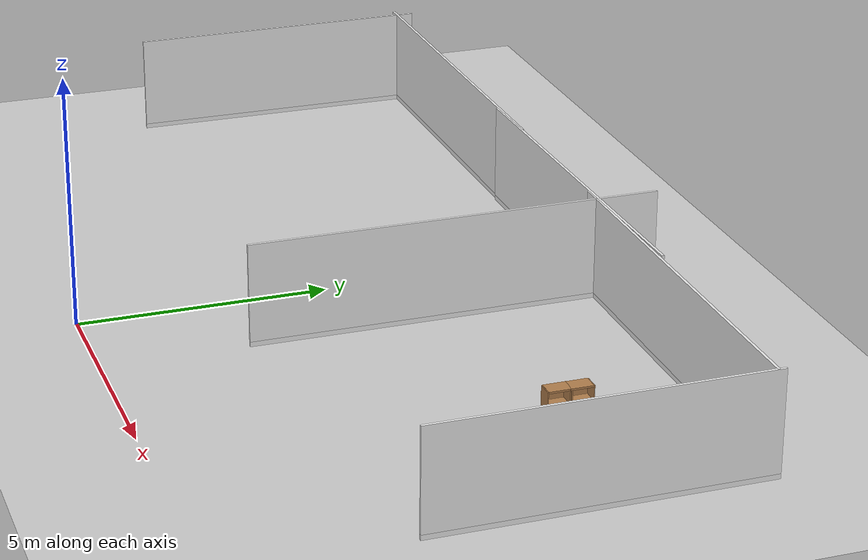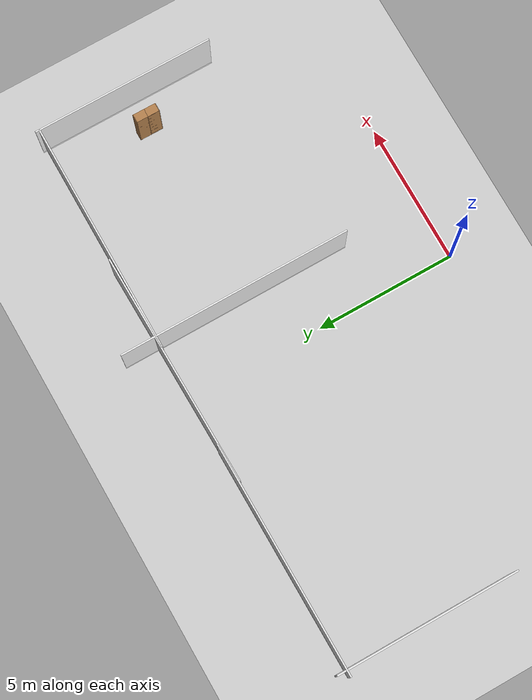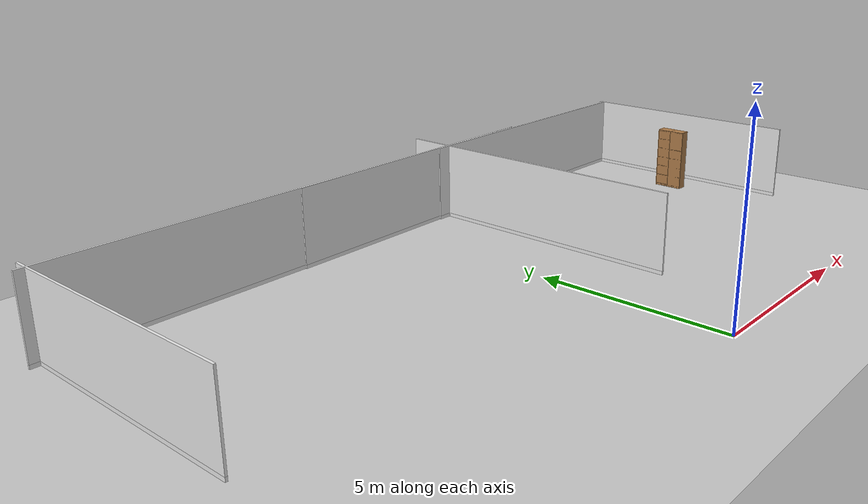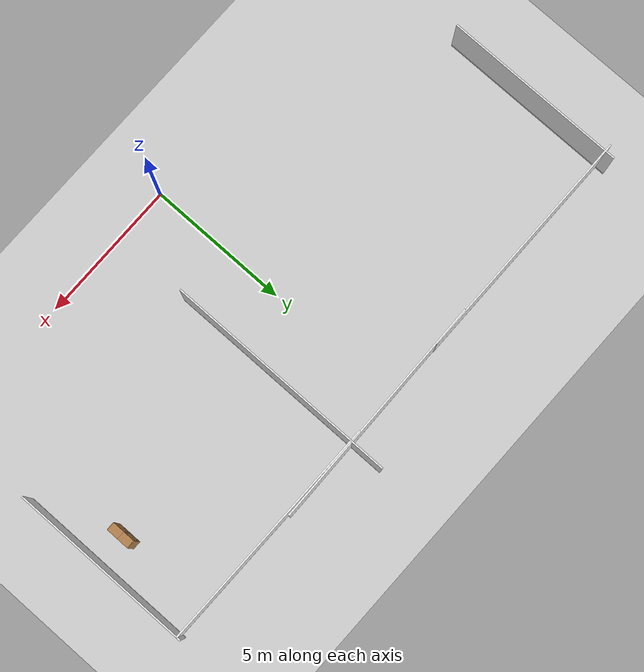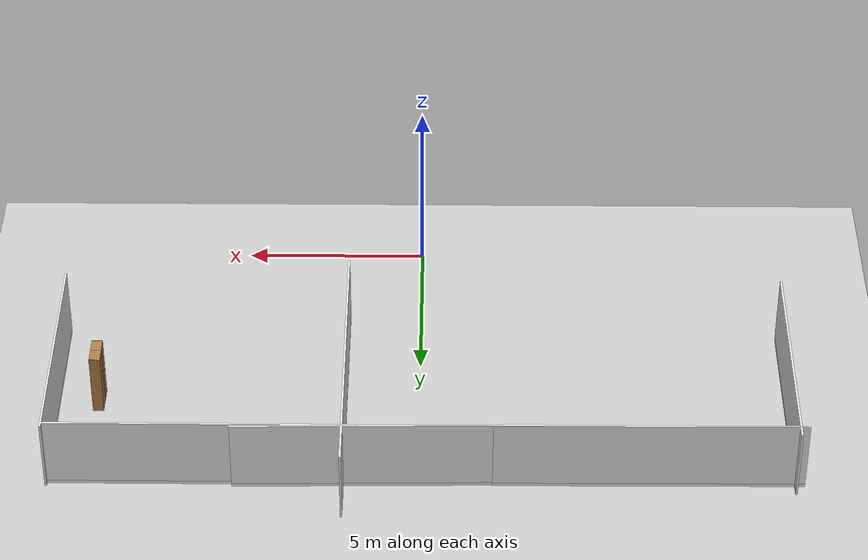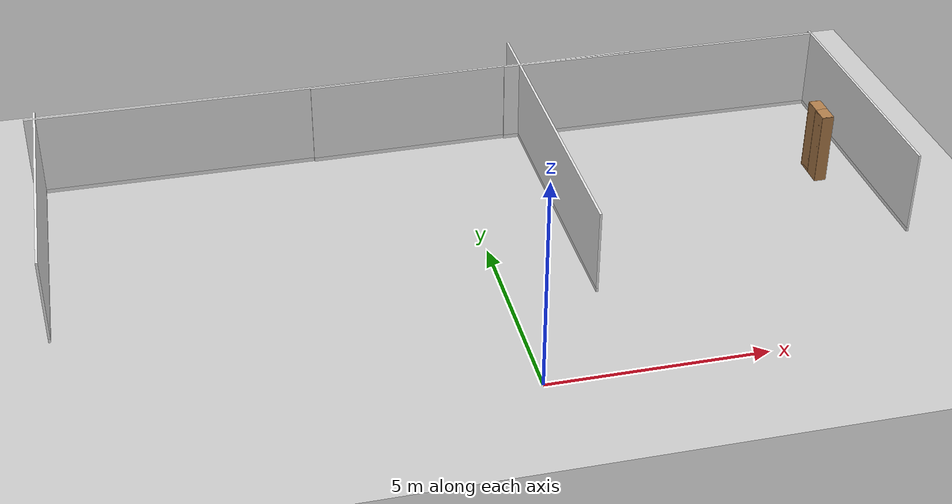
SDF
<sdf version="1.7">
 <world name="default">
  <model name="ground_plane">
   <static>1</static>
   <link name="link">
    <collision name="collision">
     <geometry><plane><normal>0 0 1</normal><size>100 100</size></plane></geometry>
     <surface><friction><ode><mu>100</mu><mu2>50</mu2></ode></friction></surface>
    </collision>
    <visual name="visual">
     <cast_shadows>0</cast_shadows>
     <geometry><plane><normal>0 0 1</normal><size>100 100</size></plane></geometry>
     <material>
      <script><uri>file://media/materials/scripts/gazebo.material</uri><name>Gazebo/Grey</name></script>
     </material>
    </visual>
   </link>
  </model>
  <model name="full_wall_55_6475_2090">
   <link name="link">
    <inertial>
     <mass>50</mass>
     <inertia><ixx>1</ixx><ixy>0</ixy><ixz>0</ixz><iyy>1</iyy><iyz>0</iyz><izz>1</izz></inertia>
    </inertial>
    <visual name="bottom_frame">
     <pose>0 0 0.05 0 -0 0</pose>
     <geometry><box><size>0.055 6.475 0.1</size></box></geometry>
     <material>
      <script><uri>model://base_materials/color/scripts</uri><name>hsr_color/white</name></script>
     </material>
    </visual>
    <collision name="collision_bottom_frame">
     <pose>0 0 0.05 0 -0 0</pose>
     <geometry><box><size>0.055 6.475 0.1</size></box></geometry>
    </collision>
    <visual name="wall">
     <pose>0 0 1.095 0 -0 0</pose>
     <geometry><box><size>0.055 6.475 1.99</size></box></geometry>
     <material>
      <script>
       <uri>model://base_materials/wall/scripts</uri>
       <uri>model://base_materials/wall/textures</uri>
       <name>wall/white_noise</name>
      </script>
     </material>
    </visual>
    <collision name="collision_wall">
     <pose>0 0 1.095 0 -0 0</pose>
     <geometry><box><size>0.055 6.475 1.99</size></box></geometry>
    </collision>
    <velocity_decay><linear>0</linear><angular>0</angular></velocity_decay>
   </link>
   <static>1</static>
   <pose>9.89869 6.81005 0 0 -0 0</pose>
  </model>
  <model name="full_wall_55_6475_2090_0">
   <link name="link">
    <inertial>
     <mass>50</mass>
     <inertia><ixx>1</ixx><ixy>0</ixy><ixz>0</ixz><iyy>1</iyy><iyz>0</iyz><izz>1</izz></inertia>
    </inertial>
    <visual name="bottom_frame">
     <pose>0 0 0.05 0 -0 0</pose>
     <geometry><box><size>0.055 6.475 0.1</size></box></geometry>
     <material>
      <script><uri>model://base_materials/color/scripts</uri><name>hsr_color/white</name></script>
     </material>
    </visual>
    <collision name="collision_bottom_frame">
     <pose>0 0 0.05 0 -0 0</pose>
     <geometry><box><size>0.055 6.475 0.1</size></box></geometry>
    </collision>
    <visual name="wall">
     <pose>0 0 1.095 0 -0 0</pose>
     <geometry><box><size>0.055 6.475 1.99</size></box></geometry>
     <material>
      <script>
       <uri>model://base_materials/wall/scripts</uri>
       <uri>model://base_materials/wall/textures</uri>
       <name>wall/white_noise</name>
      </script>
     </material>
    </visual>
    <collision name="collision_wall">
     <pose>0 0 1.095 0 -0 0</pose>
     <geometry><box><size>0.055 6.475 1.99</size></box></geometry>
    </collision>
    <velocity_decay><linear>0</linear><angular>0</angular></velocity_decay>
   </link>
   <static>1</static>
   <pose>-9.98989 6.98373 0 0 -0 0</pose>
  </model>
  <model name="full_wall_55_8295_2090_6">
   <link name="link">
    <inertial>
     <mass>50</mass>
     <inertia><ixx>1</ixx><ixy>0</ixy><ixz>0</ixz><iyy>1</iyy><iyz>0</iyz><izz>1</izz></inertia>
    </inertial>
    <visual name="bottom_frame">
     <pose>0 0 0.05 0 -0 0</pose>
     <geometry><box><size>0.055 8.295 0.1</size></box></geometry>
     <material>
      <script><uri>model://base_materials/color/scripts</uri><name>hsr_color/white</name></script>
     </material>
    </visual>
    <collision name="collision_bottom_frame">
     <pose>0 0 0.05 0 -0 0</pose>
     <geometry><box><size>0.055 8.295 0.1</size></box></geometry>
    </collision>
    <visual name="wall">
     <pose>0 0 1.095 0 -0 0</pose>
     <geometry><box><size>0.055 8.295 1.99</size></box></geometry>
     <material>
      <script>
       <uri>model://base_materials/wall/scripts</uri>
       <uri>model://base_materials/wall/textures</uri>
       <name>wall/white_noise</name>
      </script>
     </material>
    </visual>
    <collision name="collision_wall">
     <pose>0 0 1.095 0 -0 0</pose>
     <geometry><box><size>0.055 8.295 1.99</size></box></geometry>
    </collision>
    <velocity_decay><linear>0</linear><angular>0</angular></velocity_decay>
   </link>
   <static>1</static>
   <pose>-6.09587 9.88738 0 0 0 -1.56604</pose>
  </model>
  <model name="full_wall_55_8295_2090_7">
   <link name="link">
    <inertial>
     <mass>50</mass>
     <inertia><ixx>1</ixx><ixy>0</ixy><ixz>0</ixz><iyy>1</iyy><iyz>0</iyz><izz>1</izz></inertia>
    </inertial>
    <visual name="bottom_frame">
     <pose>0 0 0.05 0 -0 0</pose>
     <geometry><box><size>0.055 8.295 0.1</size></box></geometry>
     <material>
      <script><uri>model://base_materials/color/scripts</uri><name>hsr_color/white</name></script>
     </material>
    </visual>
    <collision name="collision_bottom_frame">
     <pose>0 0 0.05 0 -0 0</pose>
     <geometry><box><size>0.055 8.295 0.1</size></box></geometry>
    </collision>
    <visual name="wall">
     <pose>0 0 1.095 0 -0 0</pose>
     <geometry><box><size>0.055 8.295 1.99</size></box></geometry>
     <material>
      <script>
       <uri>model://base_materials/wall/scripts</uri>
       <uri>model://base_materials/wall/textures</uri>
       <name>wall/white_noise</name>
      </script>
     </material>
    </visual>
    <collision name="collision_wall">
     <pose>0 0 1.095 0 -0 0</pose>
     <geometry><box><size>0.055 8.295 1.99</size></box></geometry>
    </collision>
    <velocity_decay><linear>0</linear><angular>0</angular></velocity_decay>
   </link>
   <static>1</static>
   <pose>0.819815 9.93128 0 0 0 -1.55515</pose>
  </model>
  <model name="full_wall_55_8295_2090_8">
   <link name="link">
    <inertial>
     <mass>50</mass>
     <inertia><ixx>1</ixx><ixy>0</ixy><ixz>0</ixz><iyy>1</iyy><iyz>0</iyz><izz>1</izz></inertia>
    </inertial>
    <visual name="bottom_frame">
     <pose>0 0 0.05 0 -0 0</pose>
     <geometry><box><size>0.055 8.295 0.1</size></box></geometry>
     <material>
      <script><uri>model://base_materials/color/scripts</uri><name>hsr_color/white</name></script>
     </material>
    </visual>
    <collision name="collision_bottom_frame">
     <pose>0 0 0.05 0 -0 0</pose>
     <geometry><box><size>0.055 8.295 0.1</size></box></geometry>
    </collision>
    <visual name="wall">
     <pose>0 0 1.095 0 -0 0</pose>
     <geometry><box><size>0.055 8.295 1.99</size></box></geometry>
     <material>
      <script>
       <uri>model://base_materials/wall/scripts</uri>
       <uri>model://base_materials/wall/textures</uri>
       <name>wall/white_noise</name>
      </script>
     </material>
    </visual>
    <collision name="collision_wall">
     <pose>0 0 1.095 0 -0 0</pose>
     <geometry><box><size>0.055 8.295 1.99</size></box></geometry>
    </collision>
    <velocity_decay><linear>0</linear><angular>0</angular></velocity_decay>
   </link>
   <static>1</static>
   <pose>5.7583 9.90484 0 0 0 -1.57219</pose>
  </model>
  <model name="full_wall_55_8295_2090_9">
   <link name="link">
    <inertial>
     <mass>50</mass>
     <inertia><ixx>1</ixx><ixy>0</ixy><ixz>0</ixz><iyy>1</iyy><iyz>0</iyz><izz>1</izz></inertia>
    </inertial>
    <visual name="bottom_frame">
     <pose>0 0 0.05 0 -0 0</pose>
     <geometry><box><size>0.055 8.295 0.1</size></box></geometry>
     <material>
      <script><uri>model://base_materials/color/scripts</uri><name>hsr_color/white</name></script>
     </material>
    </visual>
    <collision name="collision_bottom_frame">
     <pose>0 0 0.05 0 -0 0</pose>
     <geometry><box><size>0.055 8.295 0.1</size></box></geometry>
    </collision>
    <visual name="wall">
     <pose>0 0 1.095 0 -0 0</pose>
     <geometry><box><size>0.055 8.295 1.99</size></box></geometry>
     <material>
      <script>
       <uri>model://base_materials/wall/scripts</uri>
       <uri>model://base_materials/wall/textures</uri>
       <name>wall/white_noise</name>
      </script>
     </material>
    </visual>
    <collision name="collision_wall">
     <pose>0 0 1.095 0 -0 0</pose>
     <geometry><box><size>0.055 8.295 1.99</size></box></geometry>
    </collision>
    <velocity_decay><linear>0</linear><angular>0</angular></velocity_decay>
   </link>
   <static>1</static>
   <pose>2.02481 7.0373 0 0 -0 0</pose>
  </model>
  <model name="high_shelf">
   <link name="link">
    <inertial>
     <mass>5</mass>
     <inertia><ixx>1</ixx><ixy>0</ixy><ixz>0</ixz><iyy>1</iyy><iyz>0</iyz><izz>1</izz></inertia>
    </inertial>
    <visual name="left_board">
     <pose>-0.1475 0.009 0.898 0 -0 0</pose>
     <geometry><box><size>0.295 0.018 1.796</size></box></geometry>
     <material>
      <script>
       <uri>model://base_materials/wood/scripts</uri>
       <uri>model://base_materials/wood/textures</uri>
       <name>base_materials/light_wood</name>
      </script>
     </material>
    </visual>
    <collision name="collision_left_board">
     <pose>-0.1475 0.009 0.898 0 -0 0</pose>
     <geometry><box><size>0.295 0.018 1.796</size></box></geometry>
    </collision>
    <visual name="right_board">
     <pose>-0.1475 0.441 0.898 0 -0 0</pose>
     <geometry><box><size>0.295 0.018 1.796</size></box></geometry>
     <material>
      <script>
       <uri>model://base_materials/wood/scripts</uri>
       <uri>model://base_materials/wood/textures</uri>
       <name>base_materials/light_wood</name>
      </script>
     </material>
    </visual>
    <collision name="collision_right_board">
     <pose>-0.1475 0.441 0.898 0 -0 0</pose>
     <geometry><box><size>0.295 0.018 1.796</size></box></geometry>
    </collision>
    <visual name="top_board">
     <pose>-0.1475 0.225 1.7825 0 -0 0</pose>
     <geometry><box><size>0.295 0.414 0.035</size></box></geometry>
     <material>
      <script>
       <uri>model://base_materials/wood/scripts</uri>
       <uri>model://base_materials/wood/textures</uri>
       <name>base_materials/light_wood</name>
      </script>
     </material>
    </visual>
    <collision name="collision_top_board">
     <pose>-0.1475 0.225 1.7825 0 -0 0</pose>
     <geometry><box><size>0.295 0.414 0.035</size></box></geometry>
    </collision>
    <visual name="1st_shelf">
     <pose>-0.162 0.225 1.51 0 -0 0</pose>
     <geometry><box><size>0.266 0.414 0.018</size></box></geometry>
     <material>
      <script>
       <uri>model://base_materials/wood/scripts</uri>
       <uri>model://base_materials/wood/textures</uri>
       <name>base_materials/light_wood</name>
      </script>
     </material>
    </visual>
    <collision name="collision_1st_shelf">
     <pose>-0.162 0.225 1.51 0 -0 0</pose>
     <geometry><box><size>0.266 0.414 0.018</size></box></geometry>
    </collision>
    <visual name="2nd_shelf">
     <pose>-0.162 0.225 1.22 0 -0 0</pose>
     <geometry><box><size>0.266 0.414 0.018</size></box></geometry>
     <material>
      <script>
       <uri>model://base_materials/wood/scripts</uri>
       <uri>model://base_materials/wood/textures</uri>
       <name>base_materials/light_wood</name>
      </script>
     </material>
    </visual>
    <collision name="collision_2nd_shelf">
     <pose>-0.162 0.225 1.22 0 -0 0</pose>
     <geometry><box><size>0.266 0.414 0.018</size></box></geometry>
    </collision>
    <visual name="3rd_shelf">
     <pose>-0.162 0.225 0.93 0 -0 0</pose>
     <geometry><box><size>0.266 0.414 0.018</size></box></geometry>
     <material>
      <script>
       <uri>model://base_materials/wood/scripts</uri>
       <uri>model://base_materials/wood/textures</uri>
       <name>base_materials/light_wood</name>
      </script>
     </material>
    </visual>
    <collision name="collision_3rd_shelf">
     <pose>-0.162 0.225 0.93 0 -0 0</pose>
     <geometry><box><size>0.266 0.414 0.018</size></box></geometry>
    </collision>
    <visual name="4th_shelf">
     <pose>-0.162 0.225 0.65 0 -0 0</pose>
     <geometry><box><size>0.266 0.414 0.018</size></box></geometry>
     <material>
      <script>
       <uri>model://base_materials/wood/scripts</uri>
       <uri>model://base_materials/wood/textures</uri>
       <name>base_materials/light_wood</name>
      </script>
     </material>
    </visual>
    <collision name="collision_4th_shelf">
     <pose>-0.162 0.225 0.65 0 -0 0</pose>
     <geometry><box><size>0.266 0.414 0.018</size></box></geometry>
    </collision>
    <visual name="5th_shelf">
     <pose>-0.162 0.225 0.36 0 -0 0</pose>
     <geometry><box><size>0.266 0.414 0.018</size></box></geometry>
     <material>
      <script>
       <uri>model://base_materials/wood/scripts</uri>
       <uri>model://base_materials/wood/textures</uri>
       <name>base_materials/light_wood</name>
      </script>
     </material>
    </visual>
    <collision name="collision_5th_shelf">
     <pose>-0.162 0.225 0.36 0 -0 0</pose>
     <geometry><box><size>0.266 0.414 0.018</size></box></geometry>
    </collision>
    <visual name="bottom_board">
     <pose>-0.1475 0.225 0.035 0 -0 0</pose>
     <geometry><box><size>0.295 0.414 0.07</size></box></geometry>
     <material>
      <script>
       <uri>model://base_materials/wood/scripts</uri>
       <uri>model://base_materials/wood/textures</uri>
       <name>base_materials/light_wood</name>
      </script>
     </material>
    </visual>
    <collision name="collision_bottom_board">
     <pose>-0.1475 0.225 0.035 0 -0 0</pose>
     <geometry><box><size>0.295 0.414 0.07</size></box></geometry>
    </collision>
    <visual name="back_board">
     <pose>-0.286 0.225 0.898 0 -0 0</pose>
     <geometry><box><size>0.018 0.414 1.796</size></box></geometry>
     <material>
      <script>
       <uri>model://base_materials/wood/scripts</uri>
       <uri>model://base_materials/wood/textures</uri>
       <name>base_materials/light_wood</name>
      </script>
     </material>
    </visual>
    <collision name="collision_back_board">
     <pose>-0.286 0.225 0.898 0 -0 0</pose>
     <geometry><box><size>0.018 0.414 1.796</size></box></geometry>
    </collision>
    <velocity_decay><linear>0</linear><angular>0</angular></velocity_decay>
   </link>
   <static>1</static>
   <pose>8.94257 6.54327 0 0 -0 0</pose>
  </model>
  <model name="high_shelf_0">
   <link name="link">
    <inertial>
     <mass>5</mass>
     <inertia><ixx>1</ixx><ixy>0</ixy><ixz>0</ixz><iyy>1</iyy><iyz>0</iyz><izz>1</izz></inertia>
    </inertial>
    <visual name="left_board">
     <pose>-0.1475 0.009 0.898 0 -0 0</pose>
     <geometry><box><size>0.295 0.018 1.796</size></box></geometry>
     <material>
      <script>
       <uri>model://base_materials/wood/scripts</uri>
       <uri>model://base_materials/wood/textures</uri>
       <name>base_materials/light_wood</name>
      </script>
     </material>
    </visual>
    <collision name="collision_left_board">
     <pose>-0.1475 0.009 0.898 0 -0 0</pose>
     <geometry><box><size>0.295 0.018 1.796</size></box></geometry>
    </collision>
    <visual name="right_board">
     <pose>-0.1475 0.441 0.898 0 -0 0</pose>
     <geometry><box><size>0.295 0.018 1.796</size></box></geometry>
     <material>
      <script>
       <uri>model://base_materials/wood/scripts</uri>
       <uri>model://base_materials/wood/textures</uri>
       <name>base_materials/light_wood</name>
      </script>
     </material>
    </visual>
    <collision name="collision_right_board">
     <pose>-0.1475 0.441 0.898 0 -0 0</pose>
     <geometry><box><size>0.295 0.018 1.796</size></box></geometry>
    </collision>
    <visual name="top_board">
     <pose>-0.1475 0.225 1.7825 0 -0 0</pose>
     <geometry><box><size>0.295 0.414 0.035</size></box></geometry>
     <material>
      <script>
       <uri>model://base_materials/wood/scripts</uri>
       <uri>model://base_materials/wood/textures</uri>
       <name>base_materials/light_wood</name>
      </script>
     </material>
    </visual>
    <collision name="collision_top_board">
     <pose>-0.1475 0.225 1.7825 0 -0 0</pose>
     <geometry><box><size>0.295 0.414 0.035</size></box></geometry>
    </collision>
    <visual name="1st_shelf">
     <pose>-0.162 0.225 1.51 0 -0 0</pose>
     <geometry><box><size>0.266 0.414 0.018</size></box></geometry>
     <material>
      <script>
       <uri>model://base_materials/wood/scripts</uri>
       <uri>model://base_materials/wood/textures</uri>
       <name>base_materials/light_wood</name>
      </script>
     </material>
    </visual>
    <collision name="collision_1st_shelf">
     <pose>-0.162 0.225 1.51 0 -0 0</pose>
     <geometry><box><size>0.266 0.414 0.018</size></box></geometry>
    </collision>
    <visual name="2nd_shelf">
     <pose>-0.162 0.225 1.22 0 -0 0</pose>
     <geometry><box><size>0.266 0.414 0.018</size></box></geometry>
     <material>
      <script>
       <uri>model://base_materials/wood/scripts</uri>
       <uri>model://base_materials/wood/textures</uri>
       <name>base_materials/light_wood</name>
      </script>
     </material>
    </visual>
    <collision name="collision_2nd_shelf">
     <pose>-0.162 0.225 1.22 0 -0 0</pose>
     <geometry><box><size>0.266 0.414 0.018</size></box></geometry>
    </collision>
    <visual name="3rd_shelf">
     <pose>-0.162 0.225 0.93 0 -0 0</pose>
     <geometry><box><size>0.266 0.414 0.018</size></box></geometry>
     <material>
      <script>
       <uri>model://base_materials/wood/scripts</uri>
       <uri>model://base_materials/wood/textures</uri>
       <name>base_materials/light_wood</name>
      </script>
     </material>
    </visual>
    <collision name="collision_3rd_shelf">
     <pose>-0.162 0.225 0.93 0 -0 0</pose>
     <geometry><box><size>0.266 0.414 0.018</size></box></geometry>
    </collision>
    <visual name="4th_shelf">
     <pose>-0.162 0.225 0.65 0 -0 0</pose>
     <geometry><box><size>0.266 0.414 0.018</size></box></geometry>
     <material>
      <script>
       <uri>model://base_materials/wood/scripts</uri>
       <uri>model://base_materials/wood/textures</uri>
       <name>base_materials/light_wood</name>
      </script>
     </material>
    </visual>
    <collision name="collision_4th_shelf">
     <pose>-0.162 0.225 0.65 0 -0 0</pose>
     <geometry><box><size>0.266 0.414 0.018</size></box></geometry>
    </collision>
    <visual name="5th_shelf">
     <pose>-0.162 0.225 0.36 0 -0 0</pose>
     <geometry><box><size>0.266 0.414 0.018</size></box></geometry>
     <material>
      <script>
       <uri>model://base_materials/wood/scripts</uri>
       <uri>model://base_materials/wood/textures</uri>
       <name>base_materials/light_wood</name>
      </script>
     </material>
    </visual>
    <collision name="collision_5th_shelf">
     <pose>-0.162 0.225 0.36 0 -0 0</pose>
     <geometry><box><size>0.266 0.414 0.018</size></box></geometry>
    </collision>
    <visual name="bottom_board">
     <pose>-0.1475 0.225 0.035 0 -0 0</pose>
     <geometry><box><size>0.295 0.414 0.07</size></box></geometry>
     <material>
      <script>
       <uri>model://base_materials/wood/scripts</uri>
       <uri>model://base_materials/wood/textures</uri>
       <name>base_materials/light_wood</name>
      </script>
     </material>
    </visual>
    <collision name="collision_bottom_board">
     <pose>-0.1475 0.225 0.035 0 -0 0</pose>
     <geometry><box><size>0.295 0.414 0.07</size></box></geometry>
    </collision>
    <visual name="back_board">
     <pose>-0.286 0.225 0.898 0 -0 0</pose>
     <geometry><box><size>0.018 0.414 1.796</size></box></geometry>
     <material>
      <script>
       <uri>model://base_materials/wood/scripts</uri>
       <uri>model://base_materials/wood/textures</uri>
       <name>base_materials/light_wood</name>
      </script>
     </material>
    </visual>
    <collision name="collision_back_board">
     <pose>-0.286 0.225 0.898 0 -0 0</pose>
     <geometry><box><size>0.018 0.414 1.796</size></box></geometry>
    </collision>
    <velocity_decay><linear>0</linear><angular>0</angular></velocity_decay>
   </link>
   <static>1</static>
   <pose>8.93961 6.14223 0 0 -0 0</pose>
  </model>
 </world>
</sdf>
